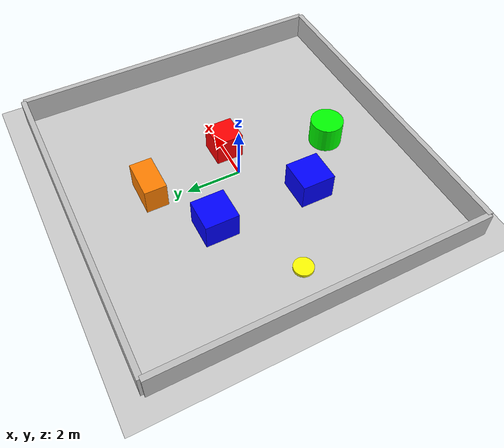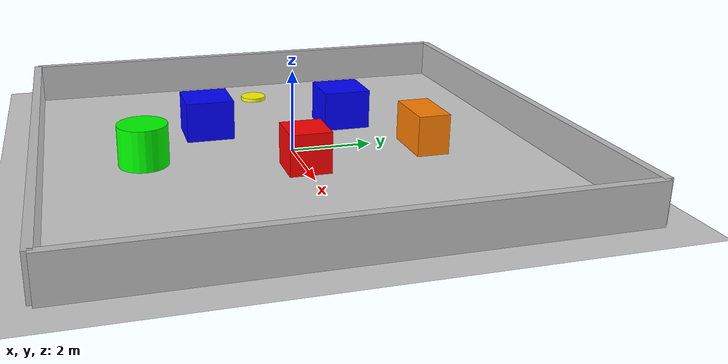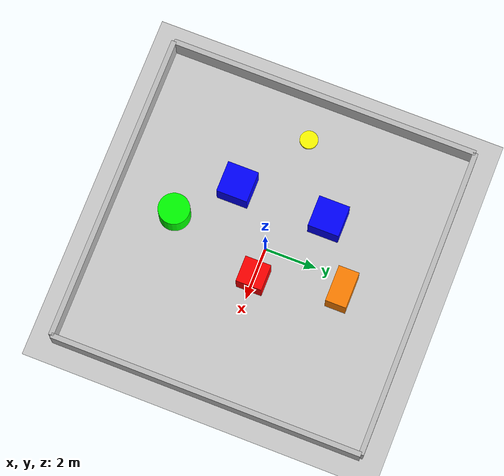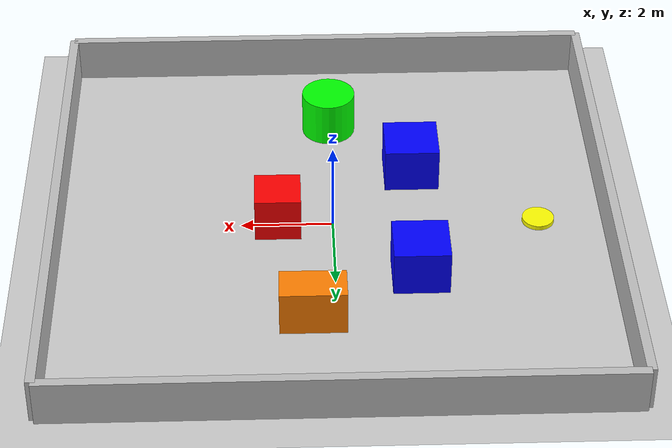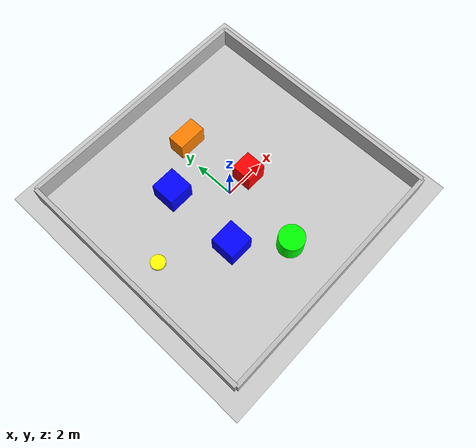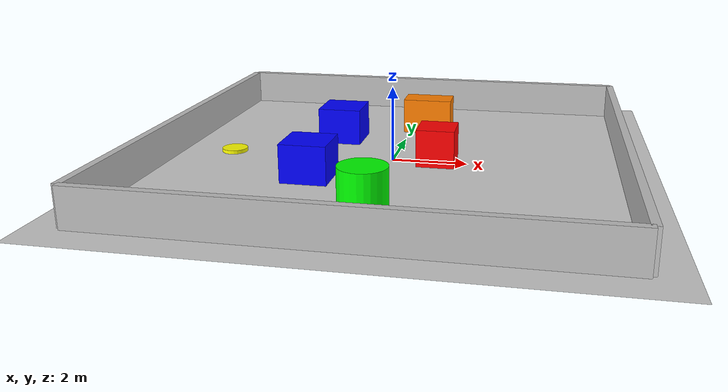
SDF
<?xml version="1.0" ?>
<sdf version="1.7">
  <world name="simple_test_world">

    <gravity>0 0 -9.8</gravity>

    <include>
      <uri>model://sun</uri>
    </include>

    <include>
      <uri>model://ground_plane</uri>
    </include>

    <physics name="default_physics" type="ode">
      <max_step_size>0.001</max_step_size>
      <real_time_factor>1.0</real_time_factor>
    </physics>

    <!-- Walls: 12m x 12m area -->

    <model name="wall_top">
      <static>true</static>
      <pose>0 6 0.5 0 0 0</pose>
      <link name="link">
        <collision name="collision">
          <geometry><box><size>12 0.2 1</size></box></geometry>
        </collision>
        <visual name="visual">
          <geometry><box><size>12 0.2 1</size></box></geometry>
          <material>
            <ambient>0.75 0.75 0.75 1</ambient>
            <diffuse>0.75 0.75 0.75 1</diffuse>
          </material>
        </visual>
      </link>
    </model>

    <model name="wall_bottom">
      <static>true</static>
      <pose>0 -6 0.5 0 0 0</pose>
      <link name="link">
        <collision name="collision">
          <geometry><box><size>12 0.2 1</size></box></geometry>
        </collision>
        <visual name="visual">
          <geometry><box><size>12 0.2 1</size></box></geometry>
          <material>
            <ambient>0.75 0.75 0.75 1</ambient>
            <diffuse>0.75 0.75 0.75 1</diffuse>
          </material>
        </visual>
      </link>
    </model>

    <model name="wall_left">
      <static>true</static>
      <pose>-6 0 0.5 0 0 0</pose>
      <link name="link">
        <collision name="collision">
          <geometry><box><size>0.2 12 1</size></box></geometry>
        </collision>
        <visual name="visual">
          <geometry><box><size>0.2 12 1</size></box></geometry>
          <material>
            <ambient>0.75 0.75 0.75 1</ambient>
            <diffuse>0.75 0.75 0.75 1</diffuse>
          </material>
        </visual>
      </link>
    </model>

    <model name="wall_right">
      <static>true</static>
      <pose>6 0 0.5 0 0 0</pose>
      <link name="link">
        <collision name="collision">
          <geometry><box><size>0.2 12 1</size></box></geometry>
        </collision>
        <visual name="visual">
          <geometry><box><size>0.2 12 1</size></box></geometry>
          <material>
            <ambient>0.75 0.75 0.75 1</ambient>
            <diffuse>0.75 0.75 0.75 1</diffuse>
          </material>
        </visual>
      </link>
    </model>

    <!-- Scenario A: single obstacle -->
    <!-- Central obstacle for basic avoidance -->
    <model name="obstacle_center">
      <static>true</static>
      <pose>1.2 0.0 0.5 0 0 0</pose>
      <link name="link">
        <collision name="collision">
          <geometry><box><size>1.0 1.0 1.0</size></box></geometry>
        </collision>
        <visual name="visual">
          <geometry><box><size>1.0 1.0 1.0</size></box></geometry>
          <material>
            <ambient>1 0 0 1</ambient>
            <diffuse>1 0 0 1</diffuse>
          </material>
        </visual>
      </link>
    </model>

    <!-- Scenario B: gate / narrow passage -->
    <!-- Two obstacles leaving a passage -->
    <model name="obstacle_gate_top">
      <static>true</static>
      <pose>-1.8 1.8 0.5 0 0 0</pose>
      <link name="link">
        <collision name="collision">
          <geometry><box><size>1.2 1.2 1.0</size></box></geometry>
        </collision>
        <visual name="visual">
          <geometry><box><size>1.2 1.2 1.0</size></box></geometry>
          <material>
            <ambient>0 0 1 1</ambient>
            <diffuse>0 0 1 1</diffuse>
          </material>
        </visual>
      </link>
    </model>

    <model name="obstacle_gate_bottom">
      <static>true</static>
      <pose>-1.8 -1.8 0.5 0 0 0</pose>
      <link name="link">
        <collision name="collision">
          <geometry><box><size>1.2 1.2 1.0</size></box></geometry>
        </collision>
        <visual name="visual">
          <geometry><box><size>1.2 1.2 1.0</size></box></geometry>
          <material>
            <ambient>0 0 1 1</ambient>
            <diffuse>0 0 1 1</diffuse>
          </material>
        </visual>
      </link>
    </model>

    <!-- Scenario C: lower curved avoidance -->
    <!-- Round obstacle -->
    <model name="obstacle_round">
      <static>true</static>
      <pose>0.0 -3.6 0.5 0 0 0</pose>
      <link name="link">
        <collision name="collision">
          <geometry><cylinder><radius>0.6</radius><length>1.0</length></cylinder></geometry>
        </collision>
        <visual name="visual">
          <geometry><cylinder><radius>0.6</radius><length>1.0</length></cylinder></geometry>
          <material>
            <ambient>0 1 0 1</ambient>
            <diffuse>0 1 0 1</diffuse>
          </material>
        </visual>
      </link>
    </model>

    <!-- Scenario D: upper offset block -->
    <!-- Additional asymmetry -->
    <model name="obstacle_upper">
      <static>true</static>
      <pose>0.5 3.2 0.5 0 0 0</pose>
      <link name="link">
        <collision name="collision">
          <geometry><box><size>1.4 0.8 1.0</size></box></geometry>
        </collision>
        <visual name="visual">
          <geometry><box><size>1.4 0.8 1.0</size></box></geometry>
          <material>
            <ambient>1 0.5 0 1</ambient>
            <diffuse>1 0.5 0 1</diffuse>
          </material>
        </visual>
      </link>
    </model>

    <!-- Goal marker -->
    <model name="goal_marker">
      <static>true</static>
      <pose>-4.5 0.0 0.05 0 0 0</pose>
      <link name="link">
        <collision name="collision">
          <geometry>
            <cylinder>
              <radius>0.35</radius>
              <length>0.1</length>
            </cylinder>
          </geometry>
        </collision>
        <visual name="visual">
          <geometry>
            <cylinder>
              <radius>0.35</radius>
              <length>0.1</length>
            </cylinder>
          </geometry>
          <material>
            <ambient>1 1 0 1</ambient>
            <diffuse>1 1 0 1</diffuse>
          </material>
        </visual>
      </link>
    </model>

  </world>
</sdf>
